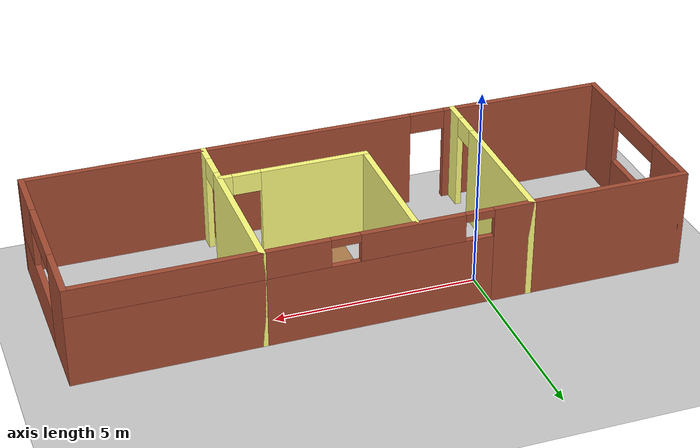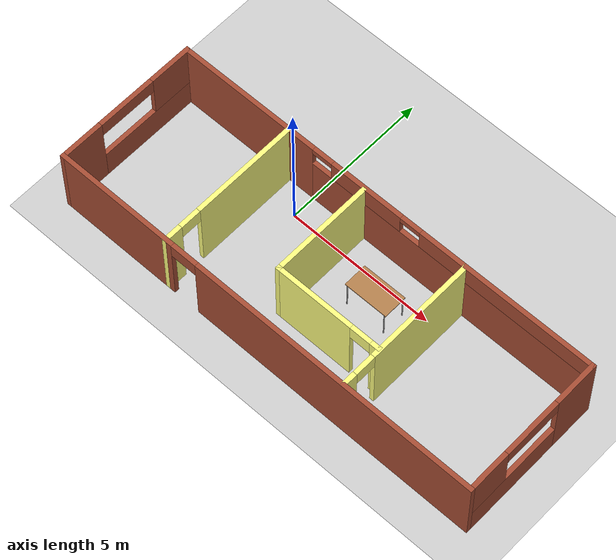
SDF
<sdf version="1.6">
 <world name="default">
  <plugin name="hello" filename="libhello.so"/>
  <light name="sun" type="directional">
   <pose>0 0 10 0 -0 0</pose>
   <diffuse>0.8 0.8 0.8 1</diffuse>
   <specular>0.2 0.2 0.2 1</specular>
   <attenuation>
    <range>1000</range>
    <constant>0.9</constant>
    <linear>0.01</linear>
    <quadratic>0.001</quadratic>
   </attenuation>
   <direction>-0.5 0.1 -0.9</direction>
  </light>
  <model name="ground_plane">
   <static>1</static>
   <link name="link">
    <collision name="collision">
     <geometry><plane><normal>0 0 1</normal><size>100 100</size></plane></geometry>
     <surface><friction><ode><mu>100</mu><mu2>50</mu2></ode></friction></surface>
    </collision>
    <visual name="visual">
     <cast_shadows>0</cast_shadows>
     <geometry><plane><normal>0 0 1</normal><size>100 100</size></plane></geometry>
     <material>
      <script><uri>file://media/materials/scripts/gazebo.material</uri><name>Gazebo/Grey</name></script>
     </material>
    </visual>
   </link>
  </model>
  <gravity>0 0 -9.8</gravity>
  <magnetic_field>6e-06 2.3e-05 -4.2e-05</magnetic_field>
  <atmosphere type="adiabatic"/>
  <physics name="default_physics" default="0" type="ode">
   <max_step_size>0.001</max_step_size>
   <real_time_factor>1</real_time_factor>
   <real_time_update_rate>1000</real_time_update_rate>
  </physics>
  <scene><ambient>0.4 0.4 0.4 1</ambient><background>0.7 0.7 0.7 1</background><shadows>1</shadows></scene>
  <spherical_coordinates>
   <surface_model>EARTH_WGS84</surface_model>
   <latitude_deg>0</latitude_deg>
   <longitude_deg>0</longitude_deg>
   <elevation>0</elevation>
   <heading_deg>0</heading_deg>
  </spherical_coordinates>
  <model name="mybuilding">
   <pose>2.50811 -1.56131 0 0 -0 0</pose>
   <link name="Wall_1">
    <pose>0 2.425 0 0 -0 0</pose>
    <visual name="Wall_1_Visual_0">
     <pose>-5.01931 0 1.25 0 -0 0</pose>
     <geometry><box><size>4.96139 0.15 2.5</size></box></geometry>
     <material>
      <script><uri>file://media/materials/scripts/gazebo.material</uri><name>Gazebo/Bricks</name></script>
      <ambient>1 1 1 1</ambient>
     </material>
     <meta><layer>0</layer></meta>
    </visual>
    <collision name="Wall_1_Collision_0">
     <geometry><box><size>4.96139 0.15 2.5</size></box></geometry>
     <pose>-5.01931 0 1.25 0 -0 0</pose>
    </collision>
    <visual name="Wall_1_Visual_1">
     <pose>2.48069 0 0.9 0 -0 0</pose>
     <geometry><box><size>10.0386 0.15 1.8</size></box></geometry>
     <material>
      <script><uri>file://media/materials/scripts/gazebo.material</uri><name>Gazebo/Bricks</name></script>
      <ambient>1 1 1 1</ambient>
     </material>
     <meta><layer>0</layer></meta>
    </visual>
    <collision name="Wall_1_Collision_1">
     <geometry><box><size>10.0386 0.15 1.8</size></box></geometry>
     <pose>2.48069 0 0.9 0 -0 0</pose>
    </collision>
    <visual name="Wall_1_Visual_2">
     <pose>-0.568551 0 2.15 0 -0 0</pose>
     <geometry><box><size>2.54013 0.15 0.7</size></box></geometry>
     <material>
      <script><uri>file://media/materials/scripts/gazebo.material</uri><name>Gazebo/Bricks</name></script>
      <ambient>1 1 1 1</ambient>
     </material>
     <meta><layer>0</layer></meta>
    </visual>
    <collision name="Wall_1_Collision_2">
     <geometry><box><size>2.54013 0.15 0.7</size></box></geometry>
     <pose>-0.568551 0 2.15 0 -0 0</pose>
    </collision>
    <visual name="Wall_1_Visual_3">
     <pose>4.45076 0 2.15 0 -0 0</pose>
     <geometry><box><size>6.09849 0.15 0.7</size></box></geometry>
     <material>
      <script><uri>file://media/materials/scripts/gazebo.material</uri><name>Gazebo/Bricks</name></script>
      <ambient>1 1 1 1</ambient>
     </material>
     <meta><layer>0</layer></meta>
    </visual>
    <collision name="Wall_1_Collision_3">
     <geometry><box><size>6.09849 0.15 0.7</size></box></geometry>
     <pose>4.45076 0 2.15 0 -0 0</pose>
    </collision>
    <visual name="Wall_1_Visual_4">
     <pose>-2.18861 0 2.4 0 -0 0</pose>
     <geometry><box><size>0.7 0.15 0.2</size></box></geometry>
     <material>
      <script><uri>file://media/materials/scripts/gazebo.material</uri><name>Gazebo/Bricks</name></script>
      <ambient>1 1 1 1</ambient>
     </material>
     <meta><layer>0</layer></meta>
    </visual>
    <collision name="Wall_1_Collision_4">
     <geometry><box><size>0.7 0.15 0.2</size></box></geometry>
     <pose>-2.18861 0 2.4 0 -0 0</pose>
    </collision>
    <visual name="Wall_1_Visual_5">
     <pose>1.05151 0 2.4 0 -0 0</pose>
     <geometry><box><size>0.7 0.15 0.2</size></box></geometry>
     <material>
      <script><uri>file://media/materials/scripts/gazebo.material</uri><name>Gazebo/Bricks</name></script>
      <ambient>1 1 1 1</ambient>
     </material>
     <meta><layer>0</layer></meta>
    </visual>
    <collision name="Wall_1_Collision_5">
     <geometry><box><size>0.7 0.15 0.2</size></box></geometry>
     <pose>1.05151 0 2.4 0 -0 0</pose>
    </collision>
   </link>
   <link name="Wall_16">
    <pose>1.15591 -1.00344 0 0 -0 3.14159</pose>
    <visual name="Wall_16_Visual_0">
     <pose>-1.70833 0 1.25 0 -0 0</pose>
     <geometry><box><size>0.33335 0.15 2.5</size></box></geometry>
     <material>
      <script><uri>file://media/materials/scripts/gazebo.material</uri><name>Gazebo/Grey</name></script>
      <ambient>1 1 0.498039 1</ambient>
     </material>
     <meta><layer>0</layer></meta>
    </visual>
    <collision name="Wall_16_Collision_0">
     <geometry><box><size>0.33335 0.15 2.5</size></box></geometry>
     <pose>-1.70833 0 1.25 0 -0 0</pose>
    </collision>
    <visual name="Wall_16_Visual_1">
     <pose>0.516675 0 1.25 0 -0 0</pose>
     <geometry><box><size>2.71665 0.15 2.5</size></box></geometry>
     <material>
      <script><uri>file://media/materials/scripts/gazebo.material</uri><name>Gazebo/Grey</name></script>
      <ambient>1 1 0.498039 1</ambient>
     </material>
     <meta><layer>0</layer></meta>
    </visual>
    <collision name="Wall_16_Collision_1">
     <geometry><box><size>2.71665 0.15 2.5</size></box></geometry>
     <pose>0.516675 0 1.25 0 -0 0</pose>
    </collision>
    <visual name="Wall_16_Visual_2">
     <pose>-1.19165 0 2.25 0 -0 0</pose>
     <geometry><box><size>0.7 0.15 0.5</size></box></geometry>
     <material>
      <script><uri>file://media/materials/scripts/gazebo.material</uri><name>Gazebo/Grey</name></script>
      <ambient>1 1 0.498039 1</ambient>
     </material>
     <meta><layer>0</layer></meta>
    </visual>
    <collision name="Wall_16_Collision_2">
     <geometry><box><size>0.7 0.15 0.5</size></box></geometry>
     <pose>-1.19165 0 2.25 0 -0 0</pose>
    </collision>
   </link>
   <link name="Wall_2">
    <pose>7.425 0 0 0 0 -1.5708</pose>
    <visual name="Wall_2_Visual_0">
     <pose>-1.73467 0 1.25 0 -0 0</pose>
     <geometry><box><size>1.53065 0.15 2.5</size></box></geometry>
     <material>
      <script><uri>file://media/materials/scripts/gazebo.material</uri><name>Gazebo/Bricks</name></script>
      <ambient>1 1 1 1</ambient>
     </material>
     <meta><layer>0</layer></meta>
    </visual>
    <collision name="Wall_2_Collision_0">
     <geometry><box><size>1.53065 0.15 2.5</size></box></geometry>
     <pose>-1.73467 0 1.25 0 -0 0</pose>
    </collision>
    <visual name="Wall_2_Visual_1">
     <pose>0.765326 0 0.5 0 -0 0</pose>
     <geometry><box><size>3.46935 0.15 1</size></box></geometry>
     <material>
      <script><uri>file://media/materials/scripts/gazebo.material</uri><name>Gazebo/Bricks</name></script>
      <ambient>1 1 1 1</ambient>
     </material>
     <meta><layer>0</layer></meta>
    </visual>
    <collision name="Wall_2_Collision_1">
     <geometry><box><size>3.46935 0.15 1</size></box></geometry>
     <pose>0.765326 0 0.5 0 -0 0</pose>
    </collision>
    <visual name="Wall_2_Visual_2">
     <pose>1.76533 0 1.75 0 -0 0</pose>
     <geometry><box><size>1.46935 0.15 1.5</size></box></geometry>
     <material>
      <script><uri>file://media/materials/scripts/gazebo.material</uri><name>Gazebo/Bricks</name></script>
      <ambient>1 1 1 1</ambient>
     </material>
     <meta><layer>0</layer></meta>
    </visual>
    <collision name="Wall_2_Collision_2">
     <geometry><box><size>1.46935 0.15 1.5</size></box></geometry>
     <pose>1.76533 0 1.75 0 -0 0</pose>
    </collision>
    <visual name="Wall_2_Visual_3">
     <pose>0.030652 0 2.25 0 -0 0</pose>
     <geometry><box><size>2 0.15 0.5</size></box></geometry>
     <material>
      <script><uri>file://media/materials/scripts/gazebo.material</uri><name>Gazebo/Bricks</name></script>
      <ambient>1 1 1 1</ambient>
     </material>
     <meta><layer>0</layer></meta>
    </visual>
    <collision name="Wall_2_Collision_3">
     <geometry><box><size>2 0.15 0.5</size></box></geometry>
     <pose>0.030652 0 2.25 0 -0 0</pose>
    </collision>
   </link>
   <link name="Wall_21">
    <collision name="Wall_21_Collision">
     <geometry><box><size>3.5 0.15 2.5</size></box></geometry>
     <pose>0 0 1.25 0 -0 0</pose>
    </collision>
    <visual name="Wall_21_Visual">
     <pose>0 0 1.25 0 -0 0</pose>
     <geometry><box><size>3.5 0.15 2.5</size></box></geometry>
     <material>
      <script><uri>file://media/materials/scripts/gazebo.material</uri><name>Gazebo/Grey</name></script>
      <ambient>1 1 0.498039 1</ambient>
     </material>
     <meta><layer>0</layer></meta>
    </visual>
    <pose>-0.644088 0.671555 0 0 -0 1.5708</pose>
   </link>
   <link name="Wall_3">
    <pose>0 -2.425 0 0 -0 3.14159</pose>
    <visual name="Wall_3_Visual_0">
     <pose>-2.58313 0 1.25 0 -0 0</pose>
     <geometry><box><size>9.83374 0.15 2.5</size></box></geometry>
     <material>
      <script><uri>file://media/materials/scripts/gazebo.material</uri><name>Gazebo/Bricks</name></script>
      <ambient>1 1 1 1</ambient>
     </material>
     <meta><layer>0</layer></meta>
    </visual>
    <collision name="Wall_3_Collision_0">
     <geometry><box><size>9.83374 0.15 2.5</size></box></geometry>
     <pose>-2.58313 0 1.25 0 -0 0</pose>
    </collision>
    <visual name="Wall_3_Visual_1">
     <pose>5.36687 0 1.25 0 -0 0</pose>
     <geometry><box><size>4.26626 0.15 2.5</size></box></geometry>
     <material>
      <script><uri>file://media/materials/scripts/gazebo.material</uri><name>Gazebo/Bricks</name></script>
      <ambient>1 1 1 1</ambient>
     </material>
     <meta><layer>0</layer></meta>
    </visual>
    <collision name="Wall_3_Collision_1">
     <geometry><box><size>4.26626 0.15 2.5</size></box></geometry>
     <pose>5.36687 0 1.25 0 -0 0</pose>
    </collision>
    <visual name="Wall_3_Visual_2">
     <pose>2.78374 0 2.25 0 -0 0</pose>
     <geometry><box><size>0.9 0.15 0.5</size></box></geometry>
     <material>
      <script><uri>file://media/materials/scripts/gazebo.material</uri><name>Gazebo/Bricks</name></script>
      <ambient>1 1 1 1</ambient>
     </material>
     <meta><layer>0</layer></meta>
    </visual>
    <collision name="Wall_3_Collision_2">
     <geometry><box><size>0.9 0.15 0.5</size></box></geometry>
     <pose>2.78374 0 2.25 0 -0 0</pose>
    </collision>
   </link>
   <link name="Wall_4">
    <pose>-7.425 0 0 0 -0 1.5708</pose>
    <visual name="Wall_4_Visual_0">
     <pose>-1.75772 0 1.25 0 -0 0</pose>
     <geometry><box><size>1.48456 0.15 2.5</size></box></geometry>
     <material>
      <script><uri>file://media/materials/scripts/gazebo.material</uri><name>Gazebo/Bricks</name></script>
      <ambient>1 1 1 1</ambient>
     </material>
     <meta><layer>0</layer></meta>
    </visual>
    <collision name="Wall_4_Collision_0">
     <geometry><box><size>1.48456 0.15 2.5</size></box></geometry>
     <pose>-1.75772 0 1.25 0 -0 0</pose>
    </collision>
    <visual name="Wall_4_Visual_1">
     <pose>0.742279 0 0.5 0 -0 0</pose>
     <geometry><box><size>3.51544 0.15 1</size></box></geometry>
     <material>
      <script><uri>file://media/materials/scripts/gazebo.material</uri><name>Gazebo/Bricks</name></script>
      <ambient>1 1 1 1</ambient>
     </material>
     <meta><layer>0</layer></meta>
    </visual>
    <collision name="Wall_4_Collision_1">
     <geometry><box><size>3.51544 0.15 1</size></box></geometry>
     <pose>0.742279 0 0.5 0 -0 0</pose>
    </collision>
    <visual name="Wall_4_Visual_2">
     <pose>1.74228 0 1.75 0 -0 0</pose>
     <geometry><box><size>1.51544 0.15 1.5</size></box></geometry>
     <material>
      <script><uri>file://media/materials/scripts/gazebo.material</uri><name>Gazebo/Bricks</name></script>
      <ambient>1 1 1 1</ambient>
     </material>
     <meta><layer>0</layer></meta>
    </visual>
    <collision name="Wall_4_Collision_2">
     <geometry><box><size>1.51544 0.15 1.5</size></box></geometry>
     <pose>1.74228 0 1.75 0 -0 0</pose>
    </collision>
    <visual name="Wall_4_Visual_3">
     <pose>-0.015443 0 2.25 0 -0 0</pose>
     <geometry><box><size>2 0.15 0.5</size></box></geometry>
     <material>
      <script><uri>file://media/materials/scripts/gazebo.material</uri><name>Gazebo/Bricks</name></script>
      <ambient>1 1 1 1</ambient>
     </material>
     <meta><layer>0</layer></meta>
    </visual>
    <collision name="Wall_4_Collision_3">
     <geometry><box><size>2 0.15 0.5</size></box></geometry>
     <pose>-0.015443 0 2.25 0 -0 0</pose>
    </collision>
   </link>
   <link name="Wall_6">
    <pose>-3.492 0 0 0 0 -1.5708</pose>
    <visual name="Wall_6_Visual_0">
     <pose>-0.66539 0 1.25 0 -0 0</pose>
     <geometry><box><size>3.66922 0.15 2.5</size></box></geometry>
     <material>
      <script><uri>file://media/materials/scripts/gazebo.material</uri><name>Gazebo/Grey</name></script>
      <ambient>1 1 0.498039 1</ambient>
     </material>
     <meta><layer>0</layer></meta>
    </visual>
    <collision name="Wall_6_Collision_0">
     <geometry><box><size>3.66922 0.15 2.5</size></box></geometry>
     <pose>-0.66539 0 1.25 0 -0 0</pose>
    </collision>
    <visual name="Wall_6_Visual_1">
     <pose>2.18461 0 1.25 0 -0 0</pose>
     <geometry><box><size>0.63078 0.15 2.5</size></box></geometry>
     <material>
      <script><uri>file://media/materials/scripts/gazebo.material</uri><name>Gazebo/Grey</name></script>
      <ambient>1 1 0.498039 1</ambient>
     </material>
     <meta><layer>0</layer></meta>
    </visual>
    <collision name="Wall_6_Collision_1">
     <geometry><box><size>0.63078 0.15 2.5</size></box></geometry>
     <pose>2.18461 0 1.25 0 -0 0</pose>
    </collision>
    <visual name="Wall_6_Visual_2">
     <pose>1.51922 0 2.25 0 -0 0</pose>
     <geometry><box><size>0.7 0.15 0.5</size></box></geometry>
     <material>
      <script><uri>file://media/materials/scripts/gazebo.material</uri><name>Gazebo/Grey</name></script>
      <ambient>1 1 0.498039 1</ambient>
     </material>
     <meta><layer>0</layer></meta>
    </visual>
    <collision name="Wall_6_Collision_2">
     <geometry><box><size>0.7 0.15 0.5</size></box></geometry>
     <pose>1.51922 0 2.25 0 -0 0</pose>
    </collision>
   </link>
   <link name="Wall_8">
    <pose>3.0055 0 0 0 0 -1.5708</pose>
    <visual name="Wall_8_Visual_0">
     <pose>-0.61249 0 1.25 0 -0 0</pose>
     <geometry><box><size>3.77502 0.15 2.5</size></box></geometry>
     <material>
      <script><uri>file://media/materials/scripts/gazebo.material</uri><name>Gazebo/Grey</name></script>
      <ambient>1 1 0.498039 1</ambient>
     </material>
     <meta><layer>0</layer></meta>
    </visual>
    <collision name="Wall_8_Collision_0">
     <geometry><box><size>3.77502 0.15 2.5</size></box></geometry>
     <pose>-0.61249 0 1.25 0 -0 0</pose>
    </collision>
    <visual name="Wall_8_Visual_1">
     <pose>2.23751 0 1.25 0 -0 0</pose>
     <geometry><box><size>0.52498 0.15 2.5</size></box></geometry>
     <material>
      <script><uri>file://media/materials/scripts/gazebo.material</uri><name>Gazebo/Grey</name></script>
      <ambient>1 1 0.498039 1</ambient>
     </material>
     <meta><layer>0</layer></meta>
    </visual>
    <collision name="Wall_8_Collision_1">
     <geometry><box><size>0.52498 0.15 2.5</size></box></geometry>
     <pose>2.23751 0 1.25 0 -0 0</pose>
    </collision>
    <visual name="Wall_8_Visual_2">
     <pose>1.62502 0 2.25 0 -0 0</pose>
     <geometry><box><size>0.7 0.15 0.5</size></box></geometry>
     <material>
      <script><uri>file://media/materials/scripts/gazebo.material</uri><name>Gazebo/Grey</name></script>
      <ambient>1 1 0.498039 1</ambient>
     </material>
     <meta><layer>0</layer></meta>
    </visual>
    <collision name="Wall_8_Collision_2">
     <geometry><box><size>0.7 0.15 0.5</size></box></geometry>
     <pose>1.62502 0 2.25 0 -0 0</pose>
    </collision>
   </link>
   <static>1</static>
  </model>
  <model name="table">
   <static>1</static>
   <link name="link">
    <collision name="surface">
     <pose>0 0 1 0 -0 0</pose>
     <geometry><box><size>1.5 0.8 0.03</size></box></geometry>
     <surface><friction><ode><mu>0.6</mu><mu2>0.6</mu2></ode></friction></surface>
    </collision>
    <visual name="visual1">
     <pose>0 0 1 0 -0 0</pose>
     <geometry><box><size>1.5 0.8 0.03</size></box></geometry>
     <material>
      <script><uri>file://media/materials/scripts/gazebo.material</uri><name>Gazebo/Wood</name></script>
     </material>
    </visual>
    <collision name="front_left_leg">
     <pose>0.68 0.38 0.5 0 -0 0</pose>
     <geometry><cylinder><radius>0.02</radius><length>1</length></cylinder></geometry>
    </collision>
    <visual name="front_left_leg">
     <pose>0.68 0.38 0.5 0 -0 0</pose>
     <geometry><cylinder><radius>0.02</radius><length>1</length></cylinder></geometry>
     <material>
      <script><uri>file://media/materials/scripts/gazebo.material</uri><name>Gazebo/Grey</name></script>
     </material>
    </visual>
    <collision name="front_right_leg">
     <pose>0.68 -0.38 0.5 0 -0 0</pose>
     <geometry><cylinder><radius>0.02</radius><length>1</length></cylinder></geometry>
    </collision>
    <visual name="front_right_leg">
     <pose>0.68 -0.38 0.5 0 -0 0</pose>
     <geometry><cylinder><radius>0.02</radius><length>1</length></cylinder></geometry>
     <material>
      <script><uri>file://media/materials/scripts/gazebo.material</uri><name>Gazebo/Grey</name></script>
     </material>
    </visual>
    <collision name="back_right_leg">
     <pose>-0.68 -0.38 0.5 0 -0 0</pose>
     <geometry><cylinder><radius>0.02</radius><length>1</length></cylinder></geometry>
    </collision>
    <visual name="back_right_leg">
     <pose>-0.68 -0.38 0.5 0 -0 0</pose>
     <geometry><cylinder><radius>0.02</radius><length>1</length></cylinder></geometry>
     <material>
      <script><uri>file://media/materials/scripts/gazebo.material</uri><name>Gazebo/Grey</name></script>
     </material>
    </visual>
    <collision name="back_left_leg">
     <pose>-0.68 0.38 0.5 0 -0 0</pose>
     <geometry><cylinder><radius>0.02</radius><length>1</length></cylinder></geometry>
    </collision>
    <visual name="back_left_leg">
     <pose>-0.68 0.38 0.5 0 -0 0</pose>
     <geometry><cylinder><radius>0.02</radius><length>1</length></cylinder></geometry>
     <material>
      <script><uri>file://media/materials/scripts/gazebo.material</uri><name>Gazebo/Grey</name></script>
     </material>
    </visual>
   </link>
   <pose>3.68733 -0.698884 0 0 -0 0</pose>
  </model>
  <model name="my_ball">
   <link name="link_0">
    <inertial>
     <mass>1</mass>
     <inertia><ixx>0.1</ixx><ixy>0</ixy><ixz>0</ixz><iyy>0.1</iyy><iyz>0</iyz><izz>0.1</izz></inertia>
    </inertial>
    <visual name="visual">
     <geometry><sphere><radius>0.1</radius></sphere></geometry>
     <material>
      <lighting>1</lighting>
      <script><uri>file://media/materials/scripts/gazebo.material</uri><name>Gazebo/Grey</name></script>
      <ambient>1 1 1 1</ambient>
      <diffuse>1 1 1 1</diffuse>
      <specular>1 1 1 1</specular>
      <emissive>1 1 1 1</emissive>
      <shader type="vertex"><normal_map>__default__</normal_map></shader>
     </material>
    </visual>
    <collision name="collision">
     <geometry><sphere><radius>0.1</radius></sphere></geometry>
     <surface>
      <friction>
       <ode><mu>1</mu><mu2>1</mu2><fdir1>0 0 0</fdir1><slip1>0</slip1><slip2>0</slip2></ode>
       <torsional>
        <coefficient>1</coefficient>
        <patch_radius>0</patch_radius>
        <surface_radius>0</surface_radius>
        <use_patch_radius>1</use_patch_radius>
        <ode><slip>0</slip></ode>
       </torsional>
      </friction>
      <bounce><restitution_coefficient>0</restitution_coefficient><threshold>1e+06</threshold></bounce>
      <contact>
       <collide_without_contact>0</collide_without_contact>
       <collide_without_contact_bitmask>1</collide_without_contact_bitmask>
       <collide_bitmask>1</collide_bitmask>
       <ode>
        <soft_cfm>0</soft_cfm>
        <soft_erp>0.2</soft_erp>
        <kp>1e+13</kp>
        <kd>1</kd>
        <max_vel>0.01</max_vel>
        <min_depth>0</min_depth>
       </ode>
       <bullet>
        <split_impulse>1</split_impulse>
        <split_impulse_penetration_threshold>-0.01</split_impulse_penetration_threshold>
        <soft_cfm>0</soft_cfm>
        <soft_erp>0.2</soft_erp>
        <kp>1e+13</kp>
        <kd>1</kd>
       </bullet>
      </contact>
     </surface>
    </collision>
   </link>
   <static>0</static>
   <pose>1.0402 -0.409729 0.1 0 -0 0</pose>
  </model>
 </world>
</sdf>
